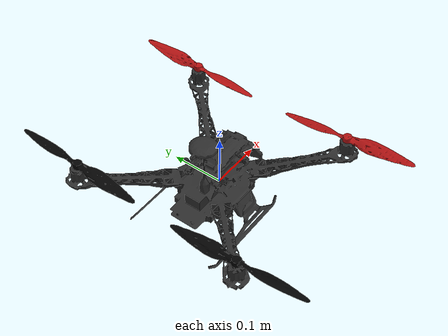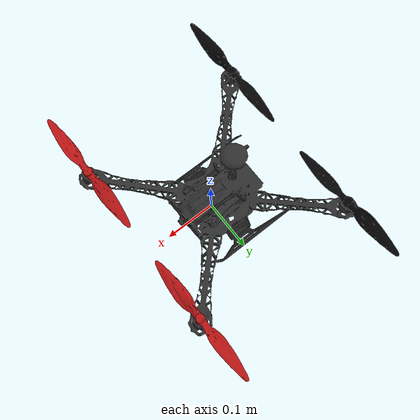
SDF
<?xml version="1.0" ?>
<sdf version="1.9">
	<model name="sentinel">
		<link name="base_link">
			<self_collide>false</self_collide>
			<pose>-0.017597526577951918 -0.0005534891021422295 0.03346192023058794 0.0 -0.0 0.0</pose>
			<inertial>
				<pose>0.0 0.0 0.0 0 0 0</pose>
				<mass>1.27004900133572</mass>
				<inertia>
					<ixx>0.022538816895746234</ixx>
					<ixy>-0.00017942821546897288</ixy>
					<ixz>0.0002277434813473601</ixz>
					<iyy>0.023099137957721515</iyy>
					<iyz>0.00028431047364877143</iyz>
					<izz>0.037292282992134926</izz>
				</inertia>
			</inertial>
			<collision name="base_link_collision">
				<geometry>
					<mesh>
						<uri>model://sentinel/meshes/CAD/base_link_collision.stl</uri>
						<scale>0.001 0.001 0.001</scale>
					</mesh>
				</geometry>
			</collision>
			<visual name="base_link_visual">
				<geometry>
					<mesh>
						<uri>model://sentinel/meshes/CAD/base_link_visual.stl</uri>
						<scale>0.001 0.001 0.001</scale>
					</mesh>
				</geometry>

				<material> <!-- DarkGrey-->
          			<ambient>0.175 0.175 0.175 1.0</ambient>
          			<diffuse>0.175 0.175 0.175 1.0</diffuse>
          			<specular>0.175 0.175 0.175 1.0</specular>
        		</material>
			</visual>

			<!-- magnetometro -->
			<sensor name="magnetometer_sensor" type="magnetometer">
				<always_on>1</always_on>
				<update_rate>50</update_rate>
				<magnetometer>
				<x>
					<noise type="gaussian">
					<mean>0.000000080</mean>
					<bias_mean>0.000000400</bias_mean>
					</noise>
				</x>
				<y>
					<noise type="gaussian">
					<mean>0.000000080</mean>
					<bias_mean>0.000000400</bias_mean>
					</noise>
				</y>
				<z>
					<noise type="gaussian">
					<mean>0.000000080</mean>
					<bias_mean>0.000000400</bias_mean>
					</noise>
				</z>
				</magnetometer>
			</sensor>

			<!-- sensor de pressao -->
			<sensor name="air_pressure_sensor" type="air_pressure">
				<always_on>1</always_on>
				<update_rate>50</update_rate>
				<air_pressure>
				<pressure>
					<noise type="gaussian">
						<mean>0</mean>
						<stddev>0.01</stddev>
					</noise>
				</pressure>
				</air_pressure>
			</sensor>

			<!-- adicao de imu -->
			<sensor name="imu_sensor" type="imu">
				<always_on>1</always_on>
				<update_rate>250</update_rate>
				<imu>
					<angular_velocity>
						<x>
							<noise type="gaussian">
								<mean>0</mean>
								<stddev>0.00018665</stddev>
								<dynamic_bias_stddev>3.8785e-05</dynamic_bias_stddev>
								<dynamic_bias_correlation_time>1000</dynamic_bias_correlation_time>
							</noise>
						</x>
						<y>
							<noise type="gaussian">
								<mean>0</mean>
								<stddev>0.00018665</stddev>
								<dynamic_bias_stddev>3.8785e-05</dynamic_bias_stddev>
								<dynamic_bias_correlation_time>1000</dynamic_bias_correlation_time>
							</noise>
						</y>
						<z>
							<noise type="gaussian">
								<mean>0</mean>
								<stddev>0.00018665</stddev>
								<dynamic_bias_stddev>3.8785e-05</dynamic_bias_stddev>
								<dynamic_bias_correlation_time>1000</dynamic_bias_correlation_time>
							</noise>
						</z>
					</angular_velocity>
					<linear_acceleration>
						<x>
							<noise type="gaussian">
								<mean>0</mean>
								<stddev>0.00186</stddev>
								<dynamic_bias_stddev>0.006</dynamic_bias_stddev>
								<dynamic_bias_correlation_time>300</dynamic_bias_correlation_time>
							</noise>
						</x>
						<y>
							<noise type="gaussian">
								<mean>0</mean>
								<stddev>0.00186</stddev>
								<dynamic_bias_stddev>0.006</dynamic_bias_stddev>
								<dynamic_bias_correlation_time>300</dynamic_bias_correlation_time>
							</noise>
						</y>
						<z>
							<noise type="gaussian">
								<mean>0</mean>
								<stddev>0.00186</stddev>
								<dynamic_bias_stddev>0.006</dynamic_bias_stddev>
								<dynamic_bias_correlation_time>300</dynamic_bias_correlation_time>
							</noise>
						</z>
					</linear_acceleration>
				</imu>
			</sensor>

			<!-- sensor nav_sat -->
			<sensor name="navsat_sensor" type="navsat">
				<always_on>1</always_on>
				<update_rate>30</update_rate>
			</sensor>

			<!-- ===============  CAMERA SENSORS (6 TOTAL)  ============== -->

			<!-- FRONT STEREO - LEFT -->
			<sensor name="front_left_cam" type="camera">
			<!-- x y z roll pitch yaw -->
			<pose>0.066012 -0.039576 0.044436 0 0 0</pose>
			<always_on>1</always_on>
			<update_rate>30</update_rate>
			<topic>/camera/front/left/image</topic>
			<camera>
				<image>
				<width>640</width>
				<height>480</height>
				<format>L16</format>
				</image>
				<horizontal_fov>1.047</horizontal_fov>
				<clip><near>0.05</near><far>100.0</far></clip>
			</camera>
			</sensor>

			<!-- FRONT STEREO - RIGHT -->
			<sensor name="front_right_cam" type="camera">
			<pose>0.065012 0.040428 0.044358 0 0 0</pose>
			<always_on>1</always_on>
			<update_rate>30</update_rate>
			<topic>/camera/front/right/image</topic>
			<camera>
				<image>
				<width>640</width>
				<height>480</height>
				<format>L16</format>
				</image>
				<horizontal_fov>1.047</horizontal_fov>
				<clip><near>0.05</near><far>100.0</far></clip>
			</camera>
			</sensor>

			<!-- REAR STEREO - LEFT (virada para trás) -->
			<sensor name="rear_left_cam" type="camera">
			<pose>-0.046553 0.039467 0.061861 0 0 3.14159265</pose>
			<always_on>1</always_on>
			<update_rate>30</update_rate>
			<topic>/camera/rear/left/image</topic>
			<camera>
				<image>
				<width>640</width>
				<height>480</height>
				<format>L16</format>
				</image>
				<horizontal_fov>1.047</horizontal_fov>
				<clip><near>0.05</near><far>100.0</far></clip>
			</camera>
			</sensor>

			<!-- REAR STEREO - RIGHT (virada para trás) -->
			<sensor name="rear_right_cam" type="camera">
			<pose>-0.045861 -0.040672 0.061756 0 0 3.14159265</pose>
			<always_on>1</always_on>
			<update_rate>30</update_rate>
			<topic>/camera/rear/right/image</topic>
			<camera>
				<image>
				<width>640</width>
				<height>480</height>
				<format>L16</format>
				</image>
				<horizontal_fov>1.047</horizontal_fov>
				<clip><near>0.05</near><far>100.0</far></clip>
			</camera>
			</sensor>

			<!-- TRACKING (FISHEYE) -->
			<sensor name="tracking_cam" type="wideanglecamera">
			<pose>0.092475 -0.000485 0.009535 0 0.76 0</pose>
			<always_on>1</always_on>
			<update_rate>60</update_rate>
			<topic>/camera/tracking/image</topic>
			<camera>
				<image>
					<width>640</width>
					<height>480</height>
					<format>L16</format>
				</image>
				<horizontal_fov>2.7925</horizontal_fov>
				<lens>
					<type>equisolid_angle</type>
					<cutoff_angle>3.14</cutoff_angle>
					<scale_to_hfov>1</scale_to_hfov>
				</lens>
				<clip>
					<near>0.05</near>
					<far>100.0</far>
				</clip>
			</camera>
			</sensor>

			<!-- HIGH-RES FRONT -->
			<sensor name="hires_cam" type="camera">
			<pose>0.06327 -0.000361 0.059636 0 0 0</pose>
			<always_on>1</always_on>
			<update_rate>30</update_rate>
			<topic>/camera/hires/image</topic>
			<camera>
				<image>
				<width>640</width>
				<height>480</height>
				<format>R8G8B8</format>
				</image>
				<horizontal_fov>0.87266</horizontal_fov>
				<clip><near>0.05</near><far>200.0</far></clip>
			</camera>
			</sensor>

		</link>
		<link name="rotor_2">
			<self_collide>false</self_collide>
			<pose>0.1503982986873746 0.16365715160700384 0.08705362955872092 0.0 -0.0 0.0</pose>
			<inertial>
				<pose>0.0 0.0 0.0 0 0 0</pose>
				<mass>0.012599261861714372</mass>
				<inertia>
					<ixx>3.710517661367394e-05</ixx>
					<ixy>-4.71241762452479e-07</ixy>
					<ixz>-5.037220426997724e-08</ixz>
					<iyy>5.692489436758041e-07</iyy>
					<iyz>-2.7661186432725863e-06</iyz>
					<izz>3.710298437539752e-05</izz>
				</inertia>
			</inertial>
			<collision name="rotor_2_collision">
				<geometry>
					<mesh>
						<uri>model://sentinel/meshes/CAD/propeller_simplified.stl</uri>
						<scale>0.001 0.001 0.001</scale>
					</mesh>
				</geometry>
			</collision>
			<visual name="rotor_2_visual">
				<geometry>
					<mesh>
						<uri>model://sentinel/meshes/CAD/rotor_2_visual.stl</uri>
						<scale>0.001 0.001 0.001</scale>
					</mesh>
				</geometry>

				<material>
					<ambient>0.694 0.071 0.071 1.0</ambient> <!-- Vermelho (#B21613) -->
					<diffuse>0.694 0.071 0.071 1.0</diffuse>
					<specular>0.5 0.5 0.5 1.0</specular>
				</material>
			</visual>
		</link>
		<link name="rotor_0">
			<self_collide>false</self_collide>
			<pose>0.15032641717958162 -0.1640004142243881 0.08611601427532098 0.0 -0.0 0.0</pose>
			<inertial>
				<pose>0.0 0.0 0.0 0 0 0</pose>
				<mass>0.012599045343699182</mass>
				<inertia>
					<ixx>3.7115236027806376e-05</ixx>
					<ixy>-4.730275520738126e-07</ixy>
					<ixz>2.0849450969318007e-08</ixz>
					<iyy>5.732334210623247e-07</iyy>
					<iyz>2.695356367427615e-06</iyz>
					<izz>3.710929113445207e-05</izz>
				</inertia>
			</inertial>
			<collision name="rotor_0_collision">
				<geometry>
					<mesh>
						<uri>model://sentinel/meshes/CAD/propeller_simplified.stl</uri>
						<scale>0.001 0.001 0.001</scale>
					</mesh>
				</geometry>
			</collision>
			<visual name="rotor_0_visual">
				<geometry>
					<mesh>
						<uri>model://sentinel/meshes/CAD/rotor_0_visual.stl</uri>
						<scale>0.001 0.001 0.001</scale>
					</mesh>
				</geometry>

				<material>
					<ambient>0.694 0.071 0.071 1.0</ambient> <!-- Vermelho (#B21613) -->
					<diffuse>0.694 0.071 0.071 1.0</diffuse>
					<specular>0.5 0.5 0.5 1.0</specular>
				</material>
			</visual>
		</link>
		<link name="rotor_1">
			<self_collide>false</self_collide>
			<pose>-0.1772573180736106 0.1638770307621374 0.08611540328020391 0.0 -0.0 0.0</pose>
			<inertial>
				<pose>0.0 0.0 0.0 0 0 0</pose>
				<mass>0.01259729049159208</mass>
				<inertia>
					<ixx>3.7126464736196497e-05</ixx>
					<ixy>-4.7295014832311466e-07</ixy>
					<ixz>-2.0831994630943208e-08</ixz>
					<iyy>5.722627022076488e-07</iyy>
					<iyz>-2.695776098262126e-06</iyz>
					<izz>3.7120458450192296e-05</izz>
				</inertia>
			</inertial>
			<collision name="rotor_1_collision">
				<geometry>
					<mesh>
						<uri>model://sentinel/meshes/CAD/propeller_simplified.stl</uri>
						<scale>0.001 0.001 0.001</scale>
					</mesh>
				</geometry>
			</collision>
			<visual name="rotor_1_visual">
				<geometry>
					<mesh>
						<uri>model://sentinel/meshes/CAD/rotor_1_visual.stl</uri>
						<scale>0.001 0.001 0.001</scale>
					</mesh>
				</geometry>

				<material>
					<ambient>0.01 0.01 0.01 1.0</ambient> <!-- Preto -->
					<diffuse>0.01 0.01 0.01 1.0</diffuse>
					<specular>0.5 0.5 0.5 1.0</specular>
				</material>
			</visual>
		</link>
		<link name="rotor_3">
			<self_collide>false</self_collide>
			<pose>-0.17739754261808954 -0.163654877866764 0.08705336738387981 0.0 -0.0 0.0</pose>
			<inertial>
				<pose>0.0 0.0 0.0 0 0 0</pose>
				<mass>0.012599470266159322</mass>
				<inertia>
					<ixx>3.710348030290378e-05</ixx>
					<ixy>-4.7025690059419034e-07</ixy>
					<ixz>5.037731321448913e-08</ixz>
					<iyy>5.689567322218814e-07</iyy>
					<iyz>2.766018724464936e-06</iyz>
					<izz>3.710140158306965e-05</izz>
				</inertia>
			</inertial>
			<collision name="rotor_3_collision">
				<geometry>
					<mesh>
						<uri>model://sentinel/meshes/CAD/propeller_simplified.stl</uri>
						<scale>0.001 0.001 0.001</scale>
					</mesh>
				</geometry>
			</collision>
			<visual name="rotor_3_visual">
				<geometry>
					<mesh>
						<uri>model://sentinel/meshes/CAD/rotor_3_visual.stl</uri>
						<scale>0.001 0.001 0.001</scale>
					</mesh>
				</geometry>

				<material>
					<ambient>0.01 0.01 0.01 1.0</ambient> <!-- Preto -->
					<diffuse>0.01 0.01 0.01 1.0</diffuse>
					<specular>0.5 0.5 0.5 1.0</specular>
				</material>
			</visual>
		</link>
		<joint name="rotor_3_joint" type="revolute">
			<parent>base_link</parent>
			<child>rotor_3</child>
			<pose>-0.00045014975726196836 -0.0004572316552014755 -0.006043517306213424 0 0 0</pose>
			<axis>
				<xyz>0.07391278520357714 0.07391278520356573 0.994521895368273</xyz>
				<limit>
					<lower>-1e+16</lower>
					<upper>1e+16</upper>
				</limit>
				<use_parent_model_frame>0</use_parent_model_frame>
			</axis>
		</joint>
		<joint name="rotor_2_joint" type="revolute">
			<parent>base_link</parent>
			<child>rotor_2</child>
			<pose>0.0004493936879570626 0.0004549579148710592 -0.006043779481262668 0 0 0</pose>
			<axis>
				<xyz>-0.07391278520357761 -0.07391278520354513 0.9945218953682744</xyz>
				<limit>
					<lower>-1e+16</lower>
					<upper>1e+16</upper>
				</limit>
				<use_parent_model_frame>0</use_parent_model_frame>
			</axis>
		</joint>
		<joint name="rotor_0_joint" type="revolute">
			<parent>base_link</parent>
			<child>rotor_0</child>
			<pose>0.0003798538397960094 -0.0003714707923870009 -0.005106164197655492 0 0 0</pose>
			<axis>
				<xyz>-0.07391278520355592 0.07391278520358698 0.994521895368273</xyz>
				<limit>
					<lower>-1e+16</lower>
					<upper>1e+16</upper>
				</limit>
				<use_parent_model_frame>0</use_parent_model_frame>
			</axis>
		</joint>
		<joint name="rotor_1_joint" type="revolute">
			<parent>base_link</parent>
			<child>rotor_1</child>
			<pose>-0.0003789840904079256 0.00037650011598913127 -0.005105553202744737 0 0 0</pose>
			<axis>
				<xyz>0.07391278520355536 -0.07391278520356737 0.9945218953682744</xyz>
				<limit>
					<lower>-1e+16</lower>
					<upper>1e+16</upper>
				</limit>
				<use_parent_model_frame>0</use_parent_model_frame>
			</axis>
		</joint>

		<plugin filename="gz-sim-multicopter-motor-model-system"
		name="gz::sim::systems::MulticopterMotorModel">
		<jointName>rotor_0_joint</jointName>
		<linkName>rotor_0</linkName>
		<turningDirection>ccw</turningDirection>
		<timeConstantUp>0.0125</timeConstantUp>
		<timeConstantDown>0.025</timeConstantDown>
		<maxRotVelocity>1000.0</maxRotVelocity>
		<motorConstant>8.54858e-06</motorConstant>
		<momentConstant>0.016</momentConstant>
		<commandSubTopic>command/motor_speed</commandSubTopic>
		<motorNumber>0</motorNumber>
		<rotorDragCoefficient>8.06428e-05</rotorDragCoefficient>
		<rollingMomentCoefficient>1e-06</rollingMomentCoefficient>
		<rotorVelocitySlowdownSim>10</rotorVelocitySlowdownSim>
		<motorType>velocity</motorType>
		</plugin>
		<plugin filename="gz-sim-multicopter-motor-model-system"
		name="gz::sim::systems::MulticopterMotorModel">
		<jointName>rotor_1_joint</jointName>
		<linkName>rotor_1</linkName>
		<turningDirection>ccw</turningDirection>
		<timeConstantUp>0.0125</timeConstantUp>
		<timeConstantDown>0.025</timeConstantDown>
		<maxRotVelocity>1000.0</maxRotVelocity>
		<motorConstant>8.54858e-06</motorConstant>
		<momentConstant>0.016</momentConstant>
		<commandSubTopic>command/motor_speed</commandSubTopic>
		<motorNumber>1</motorNumber>
		<rotorDragCoefficient>8.06428e-05</rotorDragCoefficient>
		<rollingMomentCoefficient>1e-06</rollingMomentCoefficient>
		<rotorVelocitySlowdownSim>10</rotorVelocitySlowdownSim>
		<motorType>velocity</motorType>
		</plugin>
		<plugin filename="gz-sim-multicopter-motor-model-system"
		name="gz::sim::systems::MulticopterMotorModel">
		<jointName>rotor_2_joint</jointName>
		<linkName>rotor_2</linkName>
		<turningDirection>cw</turningDirection>
		<timeConstantUp>0.0125</timeConstantUp>
		<timeConstantDown>0.025</timeConstantDown>
		<maxRotVelocity>1000.0</maxRotVelocity>
		<motorConstant>8.54858e-06</motorConstant>
		<momentConstant>0.016</momentConstant>
		<commandSubTopic>command/motor_speed</commandSubTopic>
		<motorNumber>2</motorNumber>
		<rotorDragCoefficient>8.06428e-05</rotorDragCoefficient>
		<rollingMomentCoefficient>1e-06</rollingMomentCoefficient>
		<rotorVelocitySlowdownSim>10</rotorVelocitySlowdownSim>
		<motorType>velocity</motorType>
		</plugin>
		<plugin filename="gz-sim-multicopter-motor-model-system"
		name="gz::sim::systems::MulticopterMotorModel">
		<jointName>rotor_3_joint</jointName>
		<linkName>rotor_3</linkName>
		<turningDirection>cw</turningDirection>
		<timeConstantUp>0.0125</timeConstantUp>
		<timeConstantDown>0.025</timeConstantDown>
		<maxRotVelocity>1000.0</maxRotVelocity>
		<motorConstant>8.54858e-06</motorConstant>
		<momentConstant>0.016</momentConstant>
		<commandSubTopic>command/motor_speed</commandSubTopic>
		<motorNumber>3</motorNumber>
		<rotorDragCoefficient>8.06428e-05</rotorDragCoefficient>
		<rollingMomentCoefficient>1e-06</rollingMomentCoefficient>
		<rotorVelocitySlowdownSim>10</rotorVelocitySlowdownSim>
		<motorType>velocity</motorType>
		</plugin>
	</model>
</sdf>
